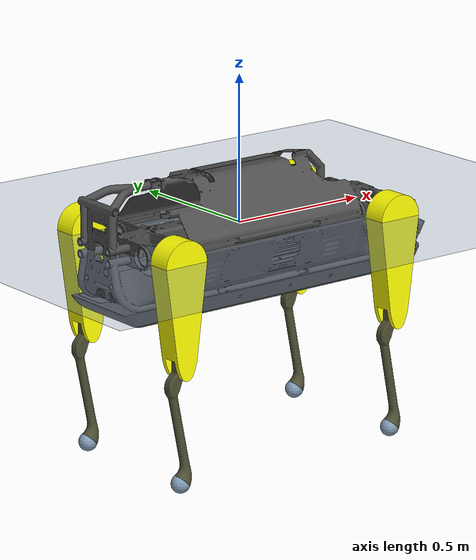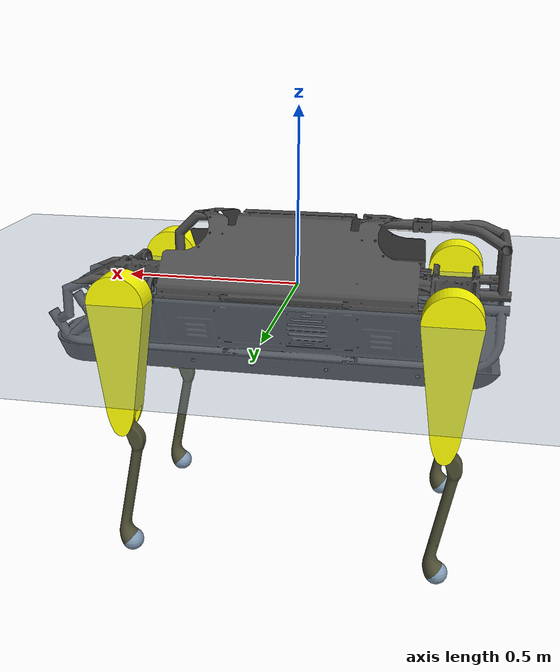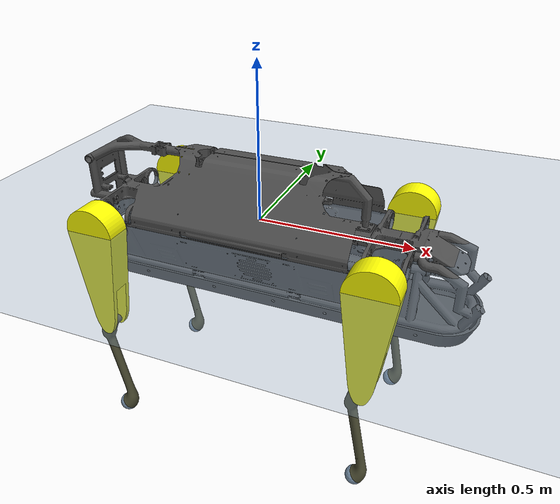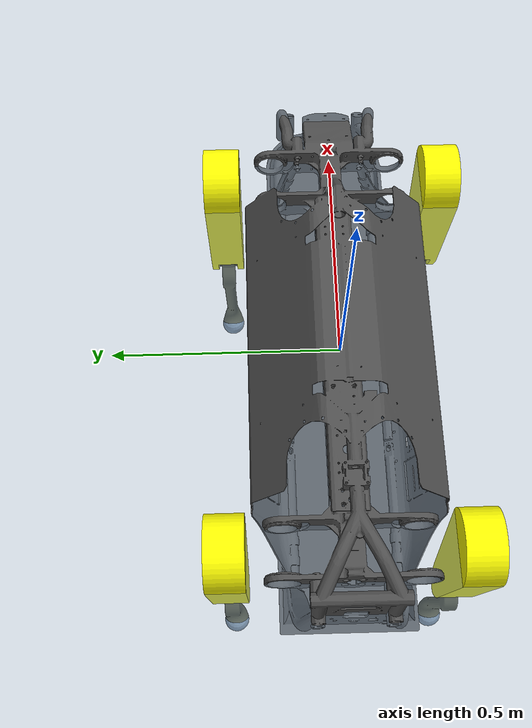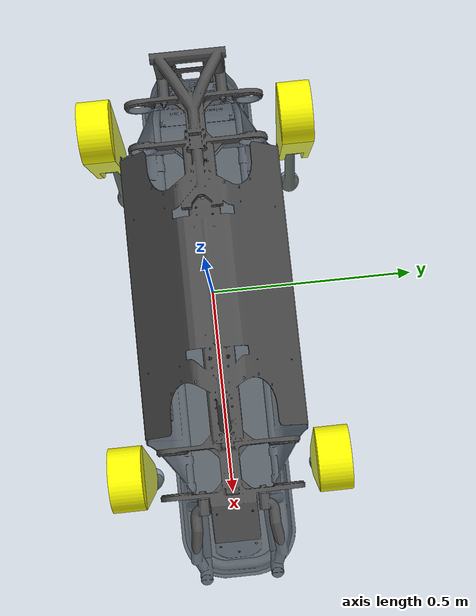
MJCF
<mujoco model="hyqreal scene">
  <include file="hyqreal.xml"/>

  <visual>
    <headlight diffuse="0.6 0.6 0.6" ambient="0.3 0.3 0.3" specular="0 0 0" />
    <rgba haze="0.15 0.25 0.35 1" />
    <global azimuth="120" elevation="-20" />
  </visual>
  <asset>
    <texture type="skybox" builtin="gradient" rgb1="0.3 0.5 0.7" rgb2="0 0 0" width="512"
      height="3072" />
    <texture type="2d" name="groundplane" builtin="checker" mark="edge" rgb1="0.2 0.3 0.4"
      rgb2="0.1 0.2 0.3" markrgb="0.8 0.8 0.8" width="300" height="300" />
    <material name="groundplane" texture="groundplane" texuniform="true" texrepeat="5 5"
      reflectance="0.2" />
  </asset>
  <worldbody>
    <light pos="0 2 1.5" dir="0 0 -1" directional="true" />
    <geom name="floor" type="plane" conaffinity="1" condim="3" contype="1"
      material="groundplane" pos="0 0 0" size="0 0 1" />
  </worldbody>
</mujoco>

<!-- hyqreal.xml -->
<!-- |    This document was autogenerated by xacro from hyqreal.urdf.xacro             | -->
<!-- |    EDITING THIS FILE BY HAND IS NOT RECOMMENDED                                 | -->
<!-- |    @author : Siddharth Deore (sidddharth.deore@iit.it)                          | -->

<mujoco model="hyqreal">
  <compiler angle="radian" autolimits="true" meshdir="assets" />
  <option cone="elliptic" impratio="100" />
  <size njmax="500" nconmax="100" />
  <default>
    <geom contype="1" conaffinity="500" friction="0.8 0.02 0.01" rgba="0.5 0.6 0.7 1"
    margin="0.001" group="0" />
    <motor ctrlrange="-208.0 208.0" ctrllimited="true" gear="1" />
    <camera fovy="60" />
    <position kp="1000" forcerange="-208 208" />

    <joint damping="50" armature="0.01" frictionloss="0.1" />
  </default>

  <statistic meansize="0.29655" extent="1.58278" center="0.0252638 1.96516e-05 -0.0852795"/>
  <asset>
    <mesh name="combined_torso" file="combined_torso.stl" scale="0.001 0.001 0.001"/>
    <mesh name="upperleg" file="upperleg.stl" scale="0.001 0.001 0.001"/>
    <mesh name="lowerleg" file="lowerleg.stl" scale="0.001 0.001 0.001"/>
  </asset>
  <worldbody>
    <body name="trunk" pos="0 0 0">
      <site name="imu" pos="0 0 0" />
      <inertial pos="-0.015 -0.00186 -0.03465" quat="0.505823 0.493632 0.493714 0.506672" mass="59" diaginertia="9.49239 9.01712 1.49396"/>
      <joint name="free_joint" type="free"/>
      <geom quat="0 0 0 1" type="mesh" rgba="0.3 0.3 0.3 1" mesh="combined_torso"/>
      <body name="FL_hip" pos="0.4435 0.139 0" quat="0 0.707107 0 -0.707107">
        <inertial pos="-0.010027 -0.010608 0.003644" quat="0.0172936 0.713902 0.11116 0.69115" mass="4.97328" diaginertia="0.0169092 0.0158089 0.0111439"/>
        <joint name="lf_haa_joint" pos="0 0 0" axis="0 0 1" range="-0.733038 0.401426" />
        <body name="lf_upperleg" pos="0 -0.117 0" quat="0.707107 0.707107 0 0">
          <inertial pos="0.107987 -0.011459 -0.002121" quat="-2.79164e-05 0.728231 -0.0229726 0.684947" mass="5.87793" diaginertia="0.0795119 0.0757918 0.0161323"/>
          <joint name="lf_hfe_joint" pos="0 0 0" axis="0 0 1" range="0.261799 2.18166" />
          <geom type="mesh" rgba="1 1 0 1" mesh="upperleg"/>
          <body name="FL_calf" pos="0.36 0 0">
            <inertial pos="0.149302 -0.003801 -0.000624" quat="0.173193 0.683299 0.187939 0.683948" mass="1.29195" diaginertia="0.0300334 0.0289679 0.00107681"/>
            <joint name="lf_kfe_joint" pos="0 0 0" axis="0 0 1" range="-2.77001 -0.669857" />
            <geom type="mesh" rgba="0.3 0.3 0.2 1" mesh="lowerleg"/>
            <geom name="FL" size="0.032" pos="0.38 0 0" quat="0.5 0.5 -0.5 -0.5"/>
          </body>
        </body>
      </body>
      <body name="FR_hip" pos="0.4435 -0.139 0" quat="0.707107 0 0.707107 0">
        <inertial pos="-0.010027 -0.010608 0.003644" quat="0.0172936 0.713902 0.11116 0.69115" mass="4.97328" diaginertia="0.0169092 0.0158089 0.0111439"/>
        <joint name="rf_haa_joint" pos="0 0 0" axis="0 0 1" range="-0.733038 0.401426" />
        <body name="rf_upperleg" pos="0 -0.117 0" quat="0.707107 -0.707107 0 0">
          <inertial pos="0.107987 -0.011459 0.002121" quat="0.0229726 0.684947 2.79164e-05 0.728231" mass="5.87793" diaginertia="0.0795119 0.0757918 0.0161323"/>
          <joint name="rf_hfe_joint" pos="0 0 0" axis="0 0 1" range="0.261799 2.18166" />
          <geom type="mesh" rgba="1 1 0 1" mesh="upperleg"/>
          <body name="FR_calf" pos="0.36 0 0">
            <inertial pos="0.149302 -0.003801 -0.000624" quat="0.173193 0.683299 0.187939 0.683948" mass="1.29195" diaginertia="0.0300334 0.0289679 0.00107681"/>
            <joint name="rf_kfe_joint" pos="0 0 0" axis="0 0 1" range="-2.77001 -0.669857" />
            <geom type="mesh" rgba="0.3 0.3 0.2 1" mesh="lowerleg"/>
            <geom name="FR" size="0.032" pos="0.38 0 0" quat="0.5 0.5 -0.5 -0.5"/>
          </body>
        </body>
      </body>
      <body name="RL_hip" pos="-0.4435 0.139 0" quat="0 0.707107 0 -0.707107">
        <inertial pos="-0.010027 -0.010608 0.003644" quat="0.0172936 0.713902 0.11116 0.69115" mass="4.97328" diaginertia="0.0169092 0.0158089 0.0111439"/>
        <joint name="lh_haa_joint" pos="0 0 0" axis="0 0 1" range="-0.733038 0.401426" />
        <body name="lh_upperleg" pos="0 -0.117 0" quat="0.707107 0.707107 0 0">
          <inertial pos="0.107987 -0.011459 -0.002121" quat="-2.79164e-05 0.728231 -0.0229726 0.684947" mass="5.87793" diaginertia="0.0795119 0.0757918 0.0161323"/>
          <joint name="lh_hfe_joint" pos="0 0 0" axis="0 0 1" range="0.261799 2.18166" />
          <geom type="mesh" rgba="1 1 0 1" mesh="upperleg"/>
          <body name="RL_calf" pos="0.36 0 0">
            <inertial pos="0.149302 -0.003801 -0.000624" quat="0.173193 0.683299 0.187939 0.683948" mass="1.29195" diaginertia="0.0300334 0.0289679 0.00107681"/>
            <joint name="lh_kfe_joint" pos="0 0 0" axis="0 0 1" range="-2.77001 -0.669857" />
            <geom type="mesh" rgba="0.3 0.3 0.2 1" mesh="lowerleg"/>
            <geom name="RL" size="0.032" pos="0.38 0 0" quat="0.5 0.5 -0.5 -0.5"/>
          </body>
        </body>
      </body>
      <body name="RR_hip" pos="-0.4435 -0.139 0" quat="0.707107 0 0.707107 0">
        <inertial pos="-0.010027 -0.010608 0.003644" quat="0.0172936 0.713902 0.11116 0.69115" mass="4.97328" diaginertia="0.0169092 0.0158089 0.0111439"/>
        <joint name="rh_haa_joint" pos="0 0 0" axis="0 0 1" range="-0.733038 0.401426" />
        <body name="rh_upperleg" pos="0 -0.117 0" quat="0.707107 -0.707107 0 0">
          <inertial pos="0.107987 -0.011459 0.002121" quat="0.0229726 0.684947 2.79164e-05 0.728231" mass="5.87793" diaginertia="0.0795119 0.0757918 0.0161323"/>
          <joint name="rh_hfe_joint" pos="0 0 0" axis="0 0 1" range="0.261799 2.18166" />
          <geom type="mesh" rgba="1 1 0 1" mesh="upperleg"/>
          <body name="RR_calf" pos="0.36 0 0">
            <inertial pos="0.149302 -0.003801 -0.000624" quat="0.173193 0.683299 0.187939 0.683948" mass="1.29195" diaginertia="0.0300334 0.0289679 0.00107681"/>
            <joint name="rh_kfe_joint" pos="0 0 0" axis="0 0 1" range="-2.77001 -0.669857" />
            <geom type="mesh" rgba="0.3 0.3 0.2 1" mesh="lowerleg"/>
            <geom name="RR" size="0.032" pos="0.38 0 0" quat="0.5 0.5 -0.5 -0.5"/>
          </body>
        </body>
      </body>
    </body>
  </worldbody>

  <sensor>
    <jointpos name="FL_hip_pos" joint="lf_haa_joint" />
    <jointpos name="FL_thigh_pos" joint="lf_hfe_joint" />
    <jointpos name="FL_calf_pos" joint="lf_kfe_joint" />

    <jointpos name="FR_hip_pos" joint="rf_haa_joint" />
    <jointpos name="FR_thigh_pos" joint="rf_hfe_joint" />
    <jointpos name="FR_calf_pos" joint="rf_kfe_joint" />

    <jointpos name="RL_hip_pos" joint="lh_haa_joint" />
    <jointpos name="RL_thigh_pos" joint="lh_hfe_joint" />
    <jointpos name="RL_calf_pos" joint="lh_kfe_joint" />

    <jointpos name="RR_hip_pos" joint="rh_haa_joint" />
    <jointpos name="RR_thigh_pos" joint="rh_hfe_joint" />
    <jointpos name="RR_calf_pos" joint="rh_kfe_joint" />

    <jointvel name="FL_hip_vel" joint="lf_haa_joint" />
    <jointvel name="FL_thigh_vel" joint="lf_hfe_joint" />
    <jointvel name="FL_calf_vel" joint="lf_kfe_joint" />

    <jointvel name="FR_hip_vel" joint="rf_haa_joint" />
    <jointvel name="FR_thigh_vel" joint="rf_hfe_joint" />
    <jointvel name="FR_calf_vel" joint="rf_kfe_joint" />

    <jointvel name="RL_hip_vel" joint="lh_haa_joint" />
    <jointvel name="RL_thigh_vel" joint="lh_hfe_joint" />
    <jointvel name="RL_calf_vel" joint="lh_kfe_joint" />

    <jointvel name="RR_hip_vel" joint="rh_haa_joint" />
    <jointvel name="RR_thigh_vel" joint="rh_hfe_joint" />
    <jointvel name="RR_calf_vel" joint="rh_kfe_joint" />

    <accelerometer name="Body_Acc" site="imu" />
    <gyro name="Body_Gyro" site="imu" />
    <framepos name="Body_Pos" objtype="site" objname="imu" />
    <framequat name="Body_Quat" objtype="site" objname="imu" />
  </sensor>

  <actuator>

    <motor name="FR_hip" ctrlrange="-173.0 173.0" joint="rf_haa_joint" />
    <motor name="FR_thigh" ctrlrange="-208 208" joint="rf_hfe_joint" />
    <motor name="FR_calf" ctrlrange="-249 249" joint="rf_kfe_joint" />

    <motor name="FL_hip" ctrlrange="-173.0 173.0" joint="lf_haa_joint" />
    <motor name="FL_thigh" ctrlrange="-208 208" joint="lf_hfe_joint" />
    <motor name="FL_calf" ctrlrange="-249 249" joint="lf_kfe_joint" />

    <motor name="RR_hip" ctrlrange="-173.0 173.0" joint="rh_haa_joint" />
    <motor name="RR_thigh" ctrlrange="-208 208" joint="rh_hfe_joint" />
    <motor name="RR_calf" ctrlrange="-249 249" joint="rh_kfe_joint" />

    <motor name="RL_hip" ctrlrange="-173.0 173.0" joint="lh_haa_joint" />
    <motor name="RL_thigh" ctrlrange="-208 208" joint="lh_hfe_joint" />
    <motor name="RL_calf" ctrlrange="-249 249" joint="lh_kfe_joint" />

</actuator>

  <keyframe>
    <key qpos='0 0 0.5 1 0 0 0 0 0.9 -1.7 0 0.9 -1.7 0 0.9 -1.7 0 0.9 -1.7' />
  </keyframe>
</mujoco>
